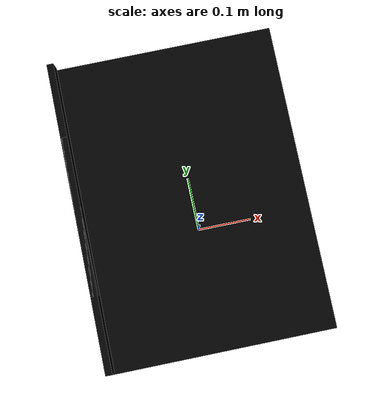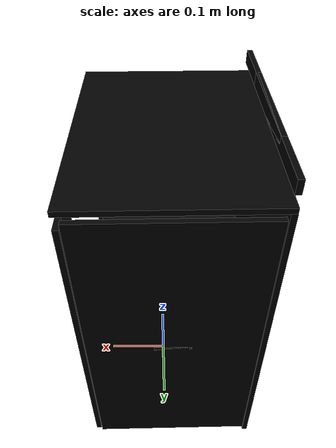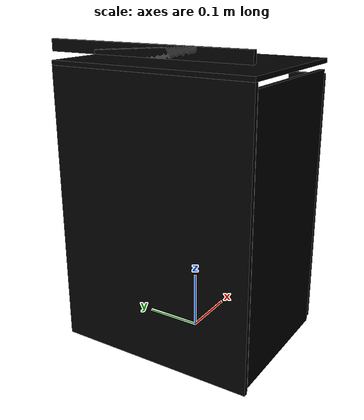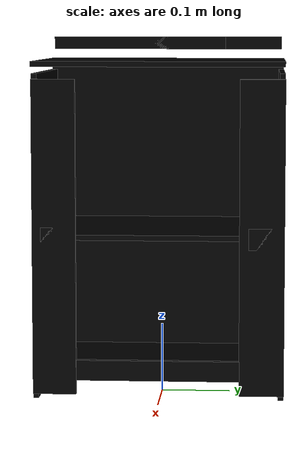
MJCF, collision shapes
<mujoco model="bookcase_hensvik_0565">
  <custom>
    <numeric data="-0.34873 0.261326 0.00379 0.703856 0.067999 -0.703802 0.068005" name="0_part0_initpos" />
    <numeric data="-0.249609 0.321251 0.003831 0.707107 0.000464 -0.707107 0.000464" name="9_part9_initpos" />
    <numeric data="0.510708 -0.221477 0.003831 0.999664 -0.0 0.0 0.025928" name="8_part8_initpos" />
    <numeric data="0.424423 0.078883 0.003841 0.706489 0.029149 0.70652 -0.029199" name="7_part7_initpos" />
    <numeric data="-0.602976 -0.20608 0.003841 0.506919 0.493015 -0.506909 0.492963" name="6_part6_initpos" />
    <numeric data="0.063299 -0.234001 0.003831 0.706994 -0.012618 0.706994 0.012618" name="5_part5_initpos" />
    <numeric data="-0.032413 0.174661 0.003831 0.999008 0.0 0.0 0.044532" name="4_part4_initpos" />
    <numeric data="-0.568739 0.259396 0.003831 0.9995 0.0 0.0 0.031628" name="3_part3_initpos" />
    <numeric data="-0.370656 -0.206767 0.003793 0.705874 -0.70591 -0.041433 0.041431" name="2_part2_initpos" />
    <numeric data="0.402221 0.303398 0.003771 0.495099 -0.495124 -0.504854 0.504828" name="1_part1_initpos" />
  </custom>
  <asset>
    <mesh file="bookcase_hensvik_0565/0.stl" name="part0" scale="0.00038 0.00038 0.00038" />
    <mesh file="bookcase_hensvik_0565/9.stl" name="part9" scale="0.00038 0.00038 0.00038" />
    <mesh file="bookcase_hensvik_0565/8.stl" name="part8" scale="0.00038 0.00038 0.00038" />
    <mesh file="bookcase_hensvik_0565/7.stl" name="part7" scale="0.00038 0.00038 0.00038" />
    <mesh file="bookcase_hensvik_0565/6.stl" name="part6" scale="0.00038 0.00038 0.00038" />
    <mesh file="bookcase_hensvik_0565/5.stl" name="part5" scale="0.00038 0.00038 0.00038" />
    <mesh file="bookcase_hensvik_0565/4.stl" name="part4" scale="0.00038 0.00038 0.00038" />
    <mesh file="bookcase_hensvik_0565/3.stl" name="part3" scale="0.00038 0.00038 0.00038" />
    <mesh file="bookcase_hensvik_0565/2.stl" name="part2" scale="0.00038 0.00038 0.00038" />
    <mesh file="bookcase_hensvik_0565/1.stl" name="part1" scale="0.00038 0.00038 0.00038" />
  </asset>
  <worldbody><body name="combined_body" pos="-0.14 0 0.51430000000000001" quat="1 0 0 0"><geom conaffinity="0" contype="0" density="0" mesh="part0" name="0_part0_mesh" pos="0.0 0.0 -0.0" rgba="0.82 0.71 0.55 1" type="mesh" quat="1 0 0 0" />
      <geom density="50" name="noviz_collision_0_part0_0" pos="0.0 0.0 -0.0" quat="1 0 0 0" rgba="0 0 0 0" size="0.0038 0.1748 0.009500000000000001" solref="0.001 1" type="box" />
      <geom density="50" name="noviz_collision_0_part0_1" pos="0.0 0.0 -0.0" quat="1 0 0 0" rgba="0 0 0 0" size="0.0038 0.0893 0.009500000000000001" solref="0.001 1" type="box" />
      <geom density="50" name="noviz_collision_0_part0_2" pos="0.0 0.0 -0.0" quat="1 0 0 0" rgba="0 0 0 0" size="0.0038 0.0893 0.009500000000000001" solref="0.001 1" type="box" />
      <site name="0_part0_horizontal_radius_site" pos="0.0 0.0 -0.0" quat="1 0 0 0" rgba="0 0 0 0" size="0.00038" />
      <site name="0_part0_top_site" pos="0.0 0.0 -0.0" quat="1 0 0 0" rgba="0 0 0 0" size="0.00038" />
      <site name="0_part0_bottom_site" pos="0.0 0.0 -0.0" quat="1 0 0 0" rgba="0 0 0 0" size="0.00038" />
      <site name="0_part0_corner_site8" pos="0.0 0.0 -0.0" quat="1 0 0 0" rgba="0 0 0 0" size="0.0076" />
      <site name="0_part0_corner_site7" pos="0.0 0.0 -0.0" quat="1 0 0 0" rgba="0 0 0 0" size="0.0076" />
      <site name="0_part0_corner_site6" pos="0.0 0.0 -0.0" quat="1 0 0 0" rgba="0 0 0 0" size="0.0076" />
      <site name="0_part0_corner_site5" pos="0.0 0.0 -0.0" quat="1 0 0 0" rgba="0 0 0 0" size="0.0076" />
      <site name="0_part0_corner_site4" pos="0.0 0.0 -0.0" quat="1 0 0 0" rgba="0 0 0 0" size="0.0076" />
      <site name="0_part0_corner_site3" pos="0.0 0.0 -0.0" quat="1 0 0 0" rgba="0 0 0 0" size="0.0076" />
      <site name="0_part0_corner_site2" pos="0.0 0.0 -0.0" quat="1 0 0 0" rgba="0 0 0 0" size="0.0076" />
      <site name="0_part0_corner_site1" pos="0.0 0.0 -0.0" quat="1 0 0 0" rgba="0 0 0 0" size="0.0076" />
      <site name="topback-top,0,180,conn_site1" pos="0.0 0.0 -0.0" quat="1 0 0 0" rgba="0.9019 0.0980 0.2941 0.3" size="0.0038" />
    <geom conaffinity="0" contype="0" density="0" mesh="part9" name="9_part9_mesh" pos="0.252882402394 6.992e-09 -0.461829168004" rgba="0.82 0.71 0.55 1" type="mesh" quat="1 0 0 0" />
      <geom density="50" name="noviz_collision_9_part9_0" pos="0.252882402394 6.992e-09 -0.461829168004" quat="1 0 0 0" rgba="0 0 0 0" size="0.0038607885999999998 0.11582400000000001 0.014477992400000002" solref="0.001 1" type="box" />
      <site name="9_part9_horizontal_radius_site" pos="0.252882402394 6.992e-09 -0.461829168004" quat="1 0 0 0" rgba="0 0 0 0" size="0.00038" />
      <site name="9_part9_top_site" pos="0.252882402394 6.992e-09 -0.461829168004" quat="1 0 0 0" rgba="0 0 0 0" size="0.00038" />
      <site name="9_part9_bottom_site" pos="0.252882402394 6.992e-09 -0.461829168004" quat="1 0 0 0" rgba="0 0 0 0" size="0.00038" />
      <site name="9_part9_corner_site8" pos="0.252882402394 6.992e-09 -0.461829168004" quat="1 0 0 0" rgba="0 0 0 0" size="0.0076" />
      <site name="9_part9_corner_site7" pos="0.252882402394 6.992e-09 -0.461829168004" quat="1 0 0 0" rgba="0 0 0 0" size="0.0076" />
      <site name="9_part9_corner_site6" pos="0.252882402394 6.992e-09 -0.461829168004" quat="1 0 0 0" rgba="0 0 0 0" size="0.0076" />
      <site name="9_part9_corner_site5" pos="0.252882402394 6.992e-09 -0.461829168004" quat="1 0 0 0" rgba="0 0 0 0" size="0.0076" />
      <site name="9_part9_corner_site4" pos="0.252882402394 6.992e-09 -0.461829168004" quat="1 0 0 0" rgba="0 0 0 0" size="0.0076" />
      <site name="9_part9_corner_site3" pos="0.252882402394 6.992e-09 -0.461829168004" quat="1 0 0 0" rgba="0 0 0 0" size="0.0076" />
      <site name="9_part9_corner_site2" pos="0.252882402394 6.992e-09 -0.461829168004" quat="1 0 0 0" rgba="0 0 0 0" size="0.0076" />
      <site name="9_part9_corner_site1" pos="0.252882402394 6.992e-09 -0.461829168004" quat="1 0 0 0" rgba="0 0 0 0" size="0.0076" />
      <site name="front-bottom,0,conn_site1" pos="0.252882402394 6.992e-09 -0.461829168004" quat="1 0 0 0" rgba="0.2352 0.7058 0.2941 0.3" size="0.0038" />
    <geom conaffinity="0" contype="0" density="0" mesh="part8" name="8_part8_mesh" pos="0.126441201216 1.254e-09 -0.027279346102" rgba="0.82 0.71 0.55 1" type="mesh" quat="1 0 0 0" />
      <geom density="50" name="noviz_collision_8_part8_0" pos="0.126441201216 1.254e-09 -0.027279346102" quat="1 0 0 0" rgba="0 0 0 0" size="0.129950158 0.178562 0.0038533747999999995" solref="0.001 1" type="box" />
      <site name="8_part8_horizontal_radius_site" pos="0.126441201216 1.254e-09 -0.027279346102" quat="1 0 0 0" rgba="0 0 0 0" size="0.00038" />
      <site name="8_part8_top_site" pos="0.126441201216 1.254e-09 -0.027279346102" quat="1 0 0 0" rgba="0 0 0 0" size="0.00038" />
      <site name="8_part8_bottom_site" pos="0.126441201216 1.254e-09 -0.027279346102" quat="1 0 0 0" rgba="0 0 0 0" size="0.00038" />
      <site name="8_part8_corner_site8" pos="0.126441201216 1.254e-09 -0.027279346102" quat="1 0 0 0" rgba="0 0 0 0" size="0.0076" />
      <site name="8_part8_corner_site7" pos="0.126441201216 1.254e-09 -0.027279346102" quat="1 0 0 0" rgba="0 0 0 0" size="0.0076" />
      <site name="8_part8_corner_site6" pos="0.126441201216 1.254e-09 -0.027279346102" quat="1 0 0 0" rgba="0 0 0 0" size="0.0076" />
      <site name="8_part8_corner_site5" pos="0.126441201216 1.254e-09 -0.027279346102" quat="1 0 0 0" rgba="0 0 0 0" size="0.0076" />
      <site name="8_part8_corner_site4" pos="0.126441201216 1.254e-09 -0.027279346102" quat="1 0 0 0" rgba="0 0 0 0" size="0.0076" />
      <site name="8_part8_corner_site3" pos="0.126441201216 1.254e-09 -0.027279346102" quat="1 0 0 0" rgba="0 0 0 0" size="0.0076" />
      <site name="8_part8_corner_site2" pos="0.126441201216 1.254e-09 -0.027279346102" quat="1 0 0 0" rgba="0 0 0 0" size="0.0076" />
      <site name="8_part8_corner_site1" pos="0.126441201216 1.254e-09 -0.027279346102" quat="1 0 0 0" rgba="0 0 0 0" size="0.0076" />
      <site name="top-side,0,180,conn_site2" pos="0.126441201216 1.254e-09 -0.027279346102" quat="1 0 0 0" rgba="1.0 0.8823 0.0980 0.3" size="0.0038" />
      <site name="top-side,0,180,conn_site1" pos="0.126441201216 1.254e-09 -0.027279346102" quat="1 0 0 0" rgba="1.0 0.8823 0.0980 0.3" size="0.0038" />
      <site name="top-topback,0,180,conn_site1" pos="0.126441201216 1.254e-09 -0.027279346102" quat="1 0 0 0" rgba="0.9019 0.0980 0.2941 0.3" size="0.0038" />
    <geom conaffinity="0" contype="0" density="0" mesh="part7" name="7_part7_mesh" pos="0.252882402394 -0.14719300106400002 -0.272440159098" rgba="0.82 0.71 0.55 1" type="mesh" quat="1 0 0 0" />
      <geom density="50" name="noviz_collision_7_part7_0" pos="0.252882402394 -0.14719300106400002 -0.272440159098" quat="1 0 0 0" rgba="0 0 0 0" size="0.0038607885999999998 0.030909162000000004 0.22419999999999998" solref="0.001 1" type="box" />
      <geom density="50" name="noviz_collision_7_part7_1" pos="0.252882402394 -0.14719300106400002 -0.272440159098" quat="1 0 0 0" rgba="0 0 0 0" size="0.0038607885999999998 0.019000000000000003 0.0152" solref="0.001 1" type="box" />
    <site name="7_part7_horizontal_radius_site" pos="0.252882402394 -0.14719300106400002 -0.272440159098" quat="1 0 0 0" rgba="0 0 0 0" size="0.00038" />
      <site name="7_part7_top_site" pos="0.252882402394 -0.14719300106400002 -0.272440159098" quat="1 0 0 0" rgba="0 0 0 0" size="0.00038" />
      <site name="7_part7_bottom_site" pos="0.252882402394 -0.14719300106400002 -0.272440159098" quat="1 0 0 0" rgba="0 0 0 0" size="0.00038" />
      <site name="7_part7_corner_site8" pos="0.252882402394 -0.14719300106400002 -0.272440159098" quat="1 0 0 0" rgba="0 0 0 0" size="0.0076" />
      <site name="7_part7_corner_site7" pos="0.252882402394 -0.14719300106400002 -0.272440159098" quat="1 0 0 0" rgba="0 0 0 0" size="0.0076" />
      <site name="7_part7_corner_site6" pos="0.252882402394 -0.14719300106400002 -0.272440159098" quat="1 0 0 0" rgba="0 0 0 0" size="0.0076" />
      <site name="7_part7_corner_site5" pos="0.252882402394 -0.14719300106400002 -0.272440159098" quat="1 0 0 0" rgba="0 0 0 0" size="0.0076" />
      <site name="7_part7_corner_site4" pos="0.252882402394 -0.14719300106400002 -0.272440159098" quat="1 0 0 0" rgba="0 0 0 0" size="0.0076" />
      <site name="7_part7_corner_site3" pos="0.252882402394 -0.14719300106400002 -0.272440159098" quat="1 0 0 0" rgba="0 0 0 0" size="0.0076" />
      <site name="7_part7_corner_site2" pos="0.252882402394 -0.14719300106400002 -0.272440159098" quat="1 0 0 0" rgba="0 0 0 0" size="0.0076" />
      <site name="7_part7_corner_site1" pos="0.252882402394 -0.14719300106400002 -0.272440159098" quat="1 0 0 0" rgba="0 0 0 0" size="0.0076" />
      <site name="leftfront-bottom,0,conn_site1" pos="0.252882402394 -0.14719300106400002 -0.272440159098" quat="1 0 0 0" rgba="0.2627 0.3882 0.8470 0.3" size="0.0038" />
      <geom conaffinity="0" contype="0" density="0" mesh="part6" name="6_part6_mesh" pos="0.252882402394 0.14719300174799999 -0.272440159098" rgba="0.82 0.71 0.55 1" type="mesh" quat="1 0 0 0" />
      <geom density="50" name="noviz_collision_6_part6_0" pos="0.252882402394 0.14719300174799999 -0.272440159098" quat="1 0 0 0" rgba="0 0 0 0" size="0.0038607885999999998 0.031828838 0.22419999999999998" solref="0.001 1" type="box" />
      <geom density="50" name="noviz_collision_6_part6_1" pos="0.252882402394 0.14719300174799999 -0.272440159098" quat="1 0 0 0" rgba="0 0 0 0" size="0.0038607885999999998 0.019000000000000003 0.0152" solref="0.001 1" type="box" />
    <site name="6_part6_horizontal_radius_site" pos="0.252882402394 0.14719300174799999 -0.272440159098" quat="1 0 0 0" rgba="0 0 0 0" size="0.00038" />
      <site name="6_part6_top_site" pos="0.252882402394 0.14719300174799999 -0.272440159098" quat="1 0 0 0" rgba="0 0 0 0" size="0.00038" />
      <site name="6_part6_bottom_site" pos="0.252882402394 0.14719300174799999 -0.272440159098" quat="1 0 0 0" rgba="0 0 0 0" size="0.00038" />
      <site name="6_part6_corner_site8" pos="0.252882402394 0.14719300174799999 -0.272440159098" quat="1 0 0 0" rgba="0 0 0 0" size="0.0076" />
      <site name="6_part6_corner_site7" pos="0.252882402394 0.14719300174799999 -0.272440159098" quat="1 0 0 0" rgba="0 0 0 0" size="0.0076" />
      <site name="6_part6_corner_site6" pos="0.252882402394 0.14719300174799999 -0.272440159098" quat="1 0 0 0" rgba="0 0 0 0" size="0.0076" />
      <site name="6_part6_corner_site5" pos="0.252882402394 0.14719300174799999 -0.272440159098" quat="1 0 0 0" rgba="0 0 0 0" size="0.0076" />
      <site name="6_part6_corner_site4" pos="0.252882402394 0.14719300174799999 -0.272440159098" quat="1 0 0 0" rgba="0 0 0 0" size="0.0076" />
      <site name="6_part6_corner_site3" pos="0.252882402394 0.14719300174799999 -0.272440159098" quat="1 0 0 0" rgba="0 0 0 0" size="0.0076" />
      <site name="6_part6_corner_site2" pos="0.252882402394 0.14719300174799999 -0.272440159098" quat="1 0 0 0" rgba="0 0 0 0" size="0.0076" />
      <site name="6_part6_corner_site1" pos="0.252882402394 0.14719300174799999 -0.272440159098" quat="1 0 0 0" rgba="0 0 0 0" size="0.0076" />
      <site name="rightfront-bottom,0,conn_site1" pos="0.252882402394 0.14719300174799999 -0.272440159098" quat="1 0 0 0" rgba="0.9607 0.5098 0.1921 0.3" size="0.0038" />
      <geom conaffinity="0" contype="0" density="0" mesh="part5" name="5_part5_mesh" pos="-8.74e-10 1.254e-09 -0.272440159098" rgba="0.82 0.71 0.55 1" type="mesh" quat="1 0 0 0" />
      <geom density="50" name="noviz_collision_5_part5_0" pos="-8.74e-10 1.254e-09 -0.272440159098" quat="1 0 0 0" rgba="0 0 0 0" size="0.0038608038 0.178562 0.24129996200000003" solref="0.001 1" type="box" />
      <site name="5_part5_horizontal_radius_site" pos="-8.74e-10 1.254e-09 -0.272440159098" quat="1 0 0 0" rgba="0 0 0 0" size="0.00038" />
      <site name="5_part5_top_site" pos="-8.74e-10 1.254e-09 -0.272440159098" quat="1 0 0 0" rgba="0 0 0 0" size="0.00038" />
      <site name="5_part5_bottom_site" pos="-8.74e-10 1.254e-09 -0.272440159098" quat="1 0 0 0" rgba="0 0 0 0" size="0.00038" />
      <site name="5_part5_corner_site8" pos="-8.74e-10 1.254e-09 -0.272440159098" quat="1 0 0 0" rgba="0 0 0 0" size="0.0076" />
      <site name="5_part5_corner_site7" pos="-8.74e-10 1.254e-09 -0.272440159098" quat="1 0 0 0" rgba="0 0 0 0" size="0.0076" />
      <site name="5_part5_corner_site6" pos="-8.74e-10 1.254e-09 -0.272440159098" quat="1 0 0 0" rgba="0 0 0 0" size="0.0076" />
      <site name="5_part5_corner_site5" pos="-8.74e-10 1.254e-09 -0.272440159098" quat="1 0 0 0" rgba="0 0 0 0" size="0.0076" />
      <site name="5_part5_corner_site4" pos="-8.74e-10 1.254e-09 -0.272440159098" quat="1 0 0 0" rgba="0 0 0 0" size="0.0076" />
      <site name="5_part5_corner_site3" pos="-8.74e-10 1.254e-09 -0.272440159098" quat="1 0 0 0" rgba="0 0 0 0" size="0.0076" />
      <site name="5_part5_corner_site2" pos="-8.74e-10 1.254e-09 -0.272440159098" quat="1 0 0 0" rgba="0 0 0 0" size="0.0076" />
      <site name="5_part5_corner_site1" pos="-8.74e-10 1.254e-09 -0.272440159098" quat="1 0 0 0" rgba="0 0 0 0" size="0.0076" />
      <site name="back-bottom,0,conn_site1" pos="-8.74e-10 1.254e-09 -0.272440159098" quat="1 0 0 0" rgba="0.5686 0.1176 0.7058 0.3" size="0.0038" />
    <geom conaffinity="0" contype="0" density="0" mesh="part4" name="4_part4_mesh" pos="0.126441203724 0.0 -0.472446367662" rgba="0.82 0.71 0.55 1" type="mesh" quat="1 0 0 0" />
      <geom density="50" name="noviz_collision_4_part4_0" pos="0.126441203724 0.0 -0.472446367662" quat="1 0 0 0" rgba="0 0 0 0" size="0.12258039999999999 0.1708404 0.0038608114" solref="0.001 1" type="box" />
      <site name="4_part4_horizontal_radius_site" pos="0.126441203724 0.0 -0.472446367662" quat="1 0 0 0" rgba="0 0 0 0" size="0.00038" />
      <site name="4_part4_top_site" pos="0.126441203724 0.0 -0.472446367662" quat="1 0 0 0" rgba="0 0 0 0" size="0.00038" />
      <site name="4_part4_bottom_site" pos="0.126441203724 0.0 -0.472446367662" quat="1 0 0 0" rgba="0 0 0 0" size="0.00038" />
      <site name="4_part4_corner_site8" pos="0.126441203724 0.0 -0.472446367662" quat="1 0 0 0" rgba="0 0 0 0" size="0.0076" />
      <site name="4_part4_corner_site7" pos="0.126441203724 0.0 -0.472446367662" quat="1 0 0 0" rgba="0 0 0 0" size="0.0076" />
      <site name="4_part4_corner_site6" pos="0.126441203724 0.0 -0.472446367662" quat="1 0 0 0" rgba="0 0 0 0" size="0.0076" />
      <site name="4_part4_corner_site5" pos="0.126441203724 0.0 -0.472446367662" quat="1 0 0 0" rgba="0 0 0 0" size="0.0076" />
      <site name="4_part4_corner_site4" pos="0.126441203724 0.0 -0.472446367662" quat="1 0 0 0" rgba="0 0 0 0" size="0.0076" />
      <site name="4_part4_corner_site3" pos="0.126441203724 0.0 -0.472446367662" quat="1 0 0 0" rgba="0 0 0 0" size="0.0076" />
      <site name="4_part4_corner_site2" pos="0.126441203724 0.0 -0.472446367662" quat="1 0 0 0" rgba="0 0 0 0" size="0.0076" />
      <site name="4_part4_corner_site1" pos="0.126441203724 0.0 -0.472446367662" quat="1 0 0 0" rgba="0 0 0 0" size="0.0076" />
      <site name="bottom-right,0,180,conn_site1" pos="0.126441203724 0.0 -0.472446367662" quat="1 0 0 0" rgba="0.2745 0.9411 0.9411 0.3" size="0.0038" />
      <site name="bottom-left,0,180,conn_site1" pos="0.126441203724 0.0 -0.472446367662" quat="1 0 0 0" rgba="0.9411 0.1960 0.9019 0.3" size="0.0038" />
      <site name="bottom-leftfront,0,conn_site1" pos="0.126441203724 0.0 -0.472446367662" quat="1 0 0 0" rgba="0.2627 0.3882 0.8470 0.3" size="0.0038" />
      <site name="bottom-rightfront,0,conn_site1" pos="0.126441203724 0.0 -0.472446367662" quat="1 0 0 0" rgba="0.9607 0.5098 0.1921 0.3" size="0.0038" />
      <site name="bottom-back,0,conn_site1" pos="0.126441203724 0.0 -0.472446367662" quat="1 0 0 0" rgba="0.5686 0.1176 0.7058 0.3" size="0.0038" />
      <site name="bottom-front,0,conn_site1" pos="0.126441203724 0.0 -0.472446367662" quat="1 0 0 0" rgba="0.2352 0.7058 0.2941 0.3" size="0.0038" />
    <geom conaffinity="0" contype="0" density="0" mesh="part3" name="3_part3_mesh" pos="0.126441203724 0.0 -0.272440159364" rgba="0.82 0.71 0.55 1" type="mesh" quat="1 0 0 0" />
      <geom density="50" name="noviz_collision_3_part3_0" pos="0.126441203724 0.0 -0.272440159364" quat="1 0 0 0" rgba="0 0 0 0" size="0.12258039999999999 0.1708404 0.0038607885999999998" solref="0.001 1" type="box" />
    <site name="3_part3_horizontal_radius_site" pos="0.126441203724 0.0 -0.272440159364" quat="1 0 0 0" rgba="0 0 0 0" size="0.00038" />
      <site name="3_part3_top_site" pos="0.126441203724 0.0 -0.272440159364" quat="1 0 0 0" rgba="0 0 0 0" size="0.00038" />
      <site name="3_part3_bottom_site" pos="0.126441203724 0.0 -0.272440159364" quat="1 0 0 0" rgba="0 0 0 0" size="0.00038" />
      <site name="3_part3_corner_site8" pos="0.126441203724 0.0 -0.272440159364" quat="1 0 0 0" rgba="0 0 0 0" size="0.0076" />
      <site name="3_part3_corner_site7" pos="0.126441203724 0.0 -0.272440159364" quat="1 0 0 0" rgba="0 0 0 0" size="0.0076" />
      <site name="3_part3_corner_site6" pos="0.126441203724 0.0 -0.272440159364" quat="1 0 0 0" rgba="0 0 0 0" size="0.0076" />
      <site name="3_part3_corner_site5" pos="0.126441203724 0.0 -0.272440159364" quat="1 0 0 0" rgba="0 0 0 0" size="0.0076" />
      <site name="3_part3_corner_site4" pos="0.126441203724 0.0 -0.272440159364" quat="1 0 0 0" rgba="0 0 0 0" size="0.0076" />
      <site name="3_part3_corner_site3" pos="0.126441203724 0.0 -0.272440159364" quat="1 0 0 0" rgba="0 0 0 0" size="0.0076" />
      <site name="3_part3_corner_site2" pos="0.126441203724 0.0 -0.272440159364" quat="1 0 0 0" rgba="0 0 0 0" size="0.0076" />
      <site name="3_part3_corner_site1" pos="0.126441203724 0.0 -0.272440159364" quat="1 0 0 0" rgba="0 0 0 0" size="0.0076" />
      <site name="flat-side,0,180,conn_site1" pos="0.126441203724 0.0 -0.272440159364" quat="1 0 0 0" rgba="0.7372 0.9647 0.0470 0.3" size="0.0038" />
      <site name="flat-side,0,180,conn_site2" pos="0.126441203724 0.0 -0.272440159364" quat="1 0 0 0" rgba="0.7372 0.9647 0.0470 0.3" size="0.0038" />
      <geom conaffinity="0" contype="0" density="0" mesh="part2" name="2_part2_mesh" pos="0.126441203724 -0.174701200836 -0.272440159098" rgba="0.82 0.71 0.55 1" type="mesh" quat="1 0 0 0" />
      <geom density="50" name="noviz_collision_2_part2_0" pos="0.126441203724 -0.174701200836 -0.272440159098" quat="1 0 0 0" rgba="0 0 0 0" size="0.1216 0.0038 0.2318" solref="0.001 1" type="box" />
      <geom density="50" name="noviz_collision_2_part2_1" pos="0.126441203724 -0.174701200836 -0.272440159098" quat="1 0 0 0" rgba="0 0 0 0" size="0.026600000000000002 0.0038 0.0076" solref="0.001 1" type="box" />
      <geom density="50" name="noviz_collision_2_part2_2" pos="0.126441203724 -0.174701200836 -0.272440159098" quat="1 0 0 0" rgba="0 0 0 0" size="0.026600000000000002 0.0038 0.0076" solref="0.001 1" type="box" />
      <site name="2_part2_horizontal_radius_site" pos="0.126441203724 -0.174701200836 -0.272440159098" quat="1 0 0 0" rgba="0 0 0 0" size="0.00038" />
      <site name="2_part2_top_site" pos="0.126441203724 -0.174701200836 -0.272440159098" quat="1 0 0 0" rgba="0 0 0 0" size="0.00038" />
      <site name="2_part2_bottom_site" pos="0.126441203724 -0.174701200836 -0.272440159098" quat="1 0 0 0" rgba="0 0 0 0" size="0.00038" />
      <site name="2_part2_corner_site8" pos="0.126441203724 -0.174701200836 -0.272440159098" quat="1 0 0 0" rgba="0 0 0 0" size="0.0076" />
      <site name="2_part2_corner_site7" pos="0.126441203724 -0.174701200836 -0.272440159098" quat="1 0 0 0" rgba="0 0 0 0" size="0.0076" />
      <site name="2_part2_corner_site6" pos="0.126441203724 -0.174701200836 -0.272440159098" quat="1 0 0 0" rgba="0 0 0 0" size="0.0076" />
      <site name="2_part2_corner_site5" pos="0.126441203724 -0.174701200836 -0.272440159098" quat="1 0 0 0" rgba="0 0 0 0" size="0.0076" />
      <site name="2_part2_corner_site4" pos="0.126441203724 -0.174701200836 -0.272440159098" quat="1 0 0 0" rgba="0 0 0 0" size="0.0076" />
      <site name="2_part2_corner_site3" pos="0.126441203724 -0.174701200836 -0.272440159098" quat="1 0 0 0" rgba="0 0 0 0" size="0.0076" />
      <site name="2_part2_corner_site2" pos="0.126441203724 -0.174701200836 -0.272440159098" quat="1 0 0 0" rgba="0 0 0 0" size="0.0076" />
      <site name="2_part2_corner_site1" pos="0.126441203724 -0.174701200836 -0.272440159098" quat="1 0 0 0" rgba="0 0 0 0" size="0.0076" />
      <site name="left-bottom,0,180,conn_site1" pos="0.126441203724 -0.174701200836 -0.272440159098" quat="1 0 0 0" rgba="0.9411 0.1960 0.9019 0.3" size="0.0038" />
      <site name="side-flat,0,180,conn_site1" pos="0.126441203724 -0.174701200836 -0.272440159098" quat="1 0 0 0" rgba="0.7372 0.9647 0.0470 0.3" size="0.0038" />
      <site name="side-top,0,180,conn_site1" pos="0.126441203724 -0.174701200836 -0.272440159098" quat="1 0 0 0" rgba="1.0 0.8823 0.0980 0.3" size="0.0038" />
    <geom conaffinity="0" contype="0" density="0" mesh="part1" name="1_part1_mesh" pos="0.126441203724 0.174701191754 -0.272440159098" rgba="0.82 0.71 0.55 1" type="mesh" quat="1 0 0 0" />
      <geom density="50" name="noviz_collision_1_part1_0" pos="0.126441203724 0.174701191754 -0.272440159098" quat="1 0 0 0" rgba="0 0 0 0" size="0.1216 0.0038 0.2318" solref="0.001 1" type="box" />
      <geom density="50" name="noviz_collision_1_part1_1" pos="0.126441203724 0.174701191754 -0.272440159098" quat="1 0 0 0" rgba="0 0 0 0" size="0.026600000000000002 0.0038 0.0076" solref="0.001 1" type="box" />
      <geom density="50" name="noviz_collision_1_part1_2" pos="0.126441203724 0.174701191754 -0.272440159098" quat="1 0 0 0" rgba="0 0 0 0" size="0.026600000000000002 0.0038 0.0076" solref="0.001 1" type="box" />
      <site name="1_part1_horizontal_radius_site" pos="0.126441203724 0.174701191754 -0.272440159098" quat="1 0 0 0" rgba="0 0 0 0" size="0.00038" />
      <site name="1_part1_top_site" pos="0.126441203724 0.174701191754 -0.272440159098" quat="1 0 0 0" rgba="0 0 0 0" size="0.00038" />
      <site name="1_part1_bottom_site" pos="0.126441203724 0.174701191754 -0.272440159098" quat="1 0 0 0" rgba="0 0 0 0" size="0.00038" />
      <site name="1_part1_corner_site8" pos="0.126441203724 0.174701191754 -0.272440159098" quat="1 0 0 0" rgba="0 0 0 0" size="0.0076" />
      <site name="1_part1_corner_site7" pos="0.126441203724 0.174701191754 -0.272440159098" quat="1 0 0 0" rgba="0 0 0 0" size="0.0076" />
      <site name="1_part1_corner_site6" pos="0.126441203724 0.174701191754 -0.272440159098" quat="1 0 0 0" rgba="0 0 0 0" size="0.0076" />
      <site name="1_part1_corner_site5" pos="0.126441203724 0.174701191754 -0.272440159098" quat="1 0 0 0" rgba="0 0 0 0" size="0.0076" />
      <site name="1_part1_corner_site4" pos="0.126441203724 0.174701191754 -0.272440159098" quat="1 0 0 0" rgba="0 0 0 0" size="0.0076" />
      <site name="1_part1_corner_site3" pos="0.126441203724 0.174701191754 -0.272440159098" quat="1 0 0 0" rgba="0 0 0 0" size="0.0076" />
      <site name="1_part1_corner_site2" pos="0.126441203724 0.174701191754 -0.272440159098" quat="1 0 0 0" rgba="0 0 0 0" size="0.0076" />
      <site name="1_part1_corner_site1" pos="0.126441203724 0.174701191754 -0.272440159098" quat="1 0 0 0" rgba="0 0 0 0" size="0.0076" />
      <site name="right-bottom,0,180,conn_site1" pos="0.126441203724 0.174701191754 -0.272440159098" quat="1 0 0 0" rgba="0.2745 0.9411 0.9411 0.3" size="0.0038" />
      <site name="side-flat,0,180,conn_site2" pos="0.126441203724 0.174701191754 -0.272440159098" quat="1 0 0 0" rgba="0.7372 0.9647 0.0470 0.3" size="0.0038" />
      <site name="side-top,0,180,conn_site2" pos="0.126441203724 0.174701191754 -0.272440159098" quat="1 0 0 0" rgba="1.0 0.8823 0.0980 0.3" size="0.0038" />
    </body></worldbody><actuator />
  <sensor />
  <contact />
  <default />
</mujoco>
